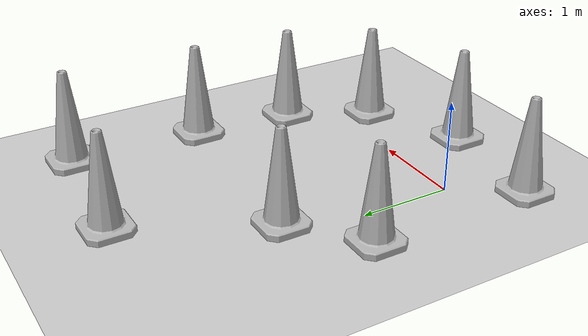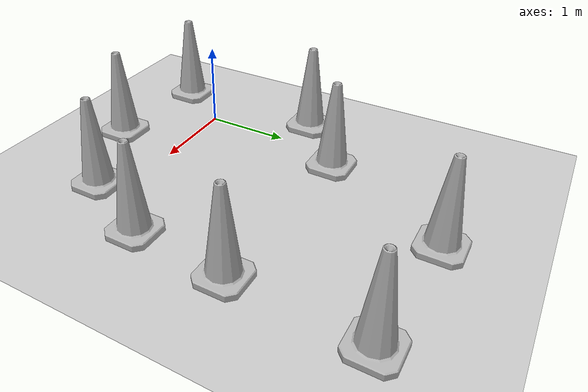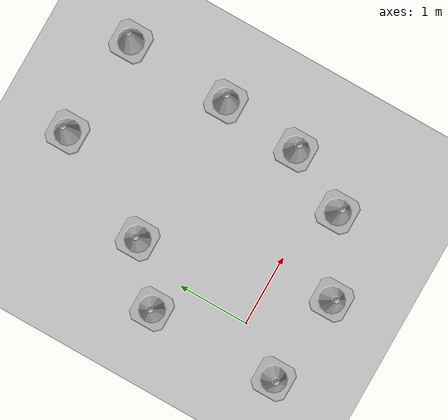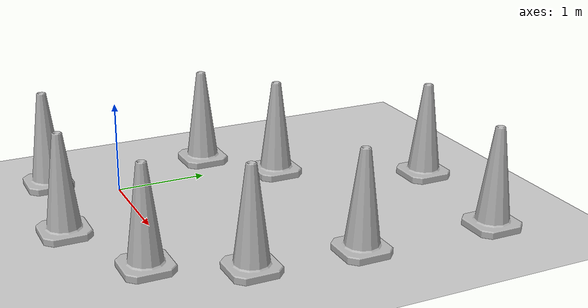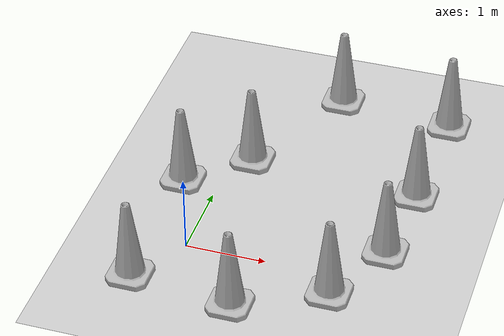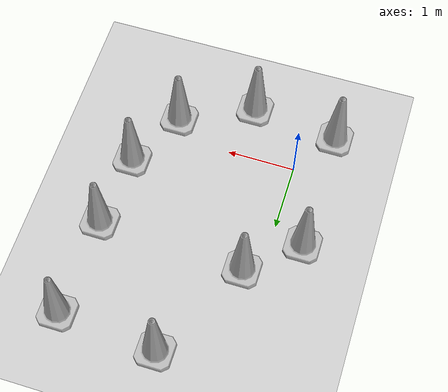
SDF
<sdf version="1.7">
 <world name="default">
  <light name="sun" type="directional">
   <pose>0 0 10 0 -0 0</pose>
   <diffuse>0.8 0.8 0.8 1</diffuse>
   <specular>0.2 0.2 0.2 1</specular>
   <attenuation>
    <range>1000</range>
    <constant>0.9</constant>
    <linear>0.01</linear>
    <quadratic>0.001</quadratic>
   </attenuation>
   <direction>-0.5 0.1 -0.9</direction>
   <spot><inner_angle>0</inner_angle><outer_angle>0</outer_angle><falloff>0</falloff></spot>
  </light>
  <model name="ground_plane">
   <static>1</static>
   <link name="link">
    <collision name="collision">
     <geometry><plane><normal>0 0 1</normal><size>100 100</size></plane></geometry>
     <surface>
      <contact><collide_bitmask>65535</collide_bitmask></contact>
      <friction><ode><mu>100</mu><mu2>50</mu2></ode></friction>
     </surface>
    </collision>
    <visual name="visual">
     <cast_shadows>0</cast_shadows>
     <geometry><plane><normal>0 0 1</normal><size>100 100</size></plane></geometry>
     <material>
      <script><uri>file://media/materials/scripts/gazebo.material</uri><name>Gazebo/Grey</name></script>
     </material>
    </visual>
   </link>
  </model>
  <gravity>0 0 -9.8</gravity>
  <magnetic_field>6e-06 2.3e-05 -4.2e-05</magnetic_field>
  <atmosphere type="adiabatic"/>
  <physics type="ode">
   <max_step_size>0.001</max_step_size>
   <real_time_factor>1</real_time_factor>
   <real_time_update_rate>1000</real_time_update_rate>
  </physics>
  <scene><ambient>0.4 0.4 0.4 1</ambient><background>0.7 0.7 0.7 1</background><shadows>1</shadows></scene>
  <audio><device>default</device></audio>
  <spherical_coordinates>
   <surface_model>EARTH_WGS84</surface_model>
   <latitude_deg>0</latitude_deg>
   <longitude_deg>0</longitude_deg>
   <elevation>0</elevation>
   <heading_deg>0</heading_deg>
  </spherical_coordinates>
  <model name="Construction Cone">
   <link name="link">
    <collision name="collision">
     <geometry>
      <mesh><scale>10 10 10</scale><uri>model://construction_cone/meshes/construction_cone.dae</uri></mesh>
     </geometry>
    </collision>
    <visual name="visual">
     <geometry>
      <mesh><scale>10 10 10</scale><uri>model://construction_cone/meshes/construction_cone.dae</uri></mesh>
     </geometry>
    </visual>
    <inertial>
     <inertia><ixx>1</ixx><ixy>0</ixy><ixz>0</ixz><iyy>1</iyy><iyz>0</iyz><izz>1</izz></inertia>
     <mass>1</mass>
    </inertial>
   </link>
   <pose>0.832208 -0.832208 -0 0 -0 0</pose>
  </model>
  <model name="Construction Cone_0">
   <link name="link">
    <collision name="collision">
     <geometry>
      <mesh><scale>10 10 10</scale><uri>model://construction_cone/meshes/construction_cone.dae</uri></mesh>
     </geometry>
    </collision>
    <visual name="visual">
     <geometry>
      <mesh><scale>10 10 10</scale><uri>model://construction_cone/meshes/construction_cone.dae</uri></mesh>
     </geometry>
    </visual>
    <inertial>
     <inertia><ixx>1</ixx><ixy>0</ixy><ixz>0</ixz><iyy>1</iyy><iyz>0</iyz><izz>1</izz></inertia>
     <mass>1</mass>
    </inertial>
   </link>
   <pose>-0.456899 -0.679908 -0 0 -0 0</pose>
  </model>
  <model name="Construction Cone_1">
   <link name="link">
    <collision name="collision">
     <geometry>
      <mesh><scale>10 10 10</scale><uri>model://construction_cone/meshes/construction_cone.dae</uri></mesh>
     </geometry>
    </collision>
    <visual name="visual">
     <geometry>
      <mesh><scale>10 10 10</scale><uri>model://construction_cone/meshes/construction_cone.dae</uri></mesh>
     </geometry>
    </visual>
    <inertial>
     <inertia><ixx>1</ixx><ixy>0</ixy><ixz>0</ixz><iyy>1</iyy><iyz>0</iyz><izz>1</izz></inertia>
     <mass>1</mass>
    </inertial>
   </link>
   <pose>1.88143 -0.325803 -0 0 -1e-06 0</pose>
  </model>
  <model name="Construction Cone_2">
   <link name="link">
    <collision name="collision">
     <geometry>
      <mesh><scale>10 10 10</scale><uri>model://construction_cone/meshes/construction_cone.dae</uri></mesh>
     </geometry>
    </collision>
    <visual name="visual">
     <geometry>
      <mesh><scale>10 10 10</scale><uri>model://construction_cone/meshes/construction_cone.dae</uri></mesh>
     </geometry>
    </visual>
    <inertial>
     <inertia><ixx>1</ixx><ixy>0</ixy><ixz>0</ixz><iyy>1</iyy><iyz>0</iyz><izz>1</izz></inertia>
     <mass>1</mass>
    </inertial>
   </link>
   <pose>2.32745 0.560798 -0 0 -1e-06 0</pose>
  </model>
  <model name="Construction Cone_3">
   <link name="link">
    <collision name="collision">
     <geometry>
      <mesh><scale>10 10 10</scale><uri>model://construction_cone/meshes/construction_cone.dae</uri></mesh>
     </geometry>
    </collision>
    <visual name="visual">
     <geometry>
      <mesh><scale>10 10 10</scale><uri>model://construction_cone/meshes/construction_cone.dae</uri></mesh>
     </geometry>
    </visual>
    <inertial>
     <inertia><ixx>1</ixx><ixy>0</ixy><ixz>0</ixz><iyy>1</iyy><iyz>0</iyz><izz>1</izz></inertia>
     <mass>1</mass>
    </inertial>
   </link>
   <pose>2.42628 1.68782 -0 -0 -0 -0</pose>
  </model>
  <model name="Construction Cone_4">
   <link name="link">
    <collision name="collision">
     <geometry>
      <mesh><scale>10 10 10</scale><uri>model://construction_cone/meshes/construction_cone.dae</uri></mesh>
     </geometry>
    </collision>
    <visual name="visual">
     <geometry>
      <mesh><scale>10 10 10</scale><uri>model://construction_cone/meshes/construction_cone.dae</uri></mesh>
     </geometry>
    </visual>
    <inertial>
     <inertia><ixx>1</ixx><ixy>0</ixy><ixz>0</ixz><iyy>1</iyy><iyz>0</iyz><izz>1</izz></inertia>
     <mass>1</mass>
    </inertial>
   </link>
   <pose>2.49699 3.17818 -0 0 -0 0</pose>
  </model>
  <model name="Construction Cone_5">
   <link name="link">
    <collision name="collision">
     <geometry>
      <mesh><scale>10 10 10</scale><uri>model://construction_cone/meshes/construction_cone.dae</uri></mesh>
     </geometry>
    </collision>
    <visual name="visual">
     <geometry>
      <mesh><scale>10 10 10</scale><uri>model://construction_cone/meshes/construction_cone.dae</uri></mesh>
     </geometry>
    </visual>
    <inertial>
     <inertia><ixx>1</ixx><ixy>0</ixy><ixz>0</ixz><iyy>1</iyy><iyz>0</iyz><izz>1</izz></inertia>
     <mass>1</mass>
    </inertial>
   </link>
   <pose>-0.450476 1.17653 -0 0 -0 0</pose>
  </model>
  <model name="Construction Cone_6">
   <link name="link">
    <collision name="collision">
     <geometry>
      <mesh><scale>10 10 10</scale><uri>model://construction_cone/meshes/construction_cone.dae</uri></mesh>
     </geometry>
    </collision>
    <visual name="visual">
     <geometry>
      <mesh><scale>10 10 10</scale><uri>model://construction_cone/meshes/construction_cone.dae</uri></mesh>
     </geometry>
    </visual>
    <inertial>
     <inertia><ixx>1</ixx><ixy>0</ixy><ixz>0</ixz><iyy>1</iyy><iyz>0</iyz><izz>1</izz></inertia>
     <mass>1</mass>
    </inertial>
   </link>
   <pose>0.26207 1.80204 -0 1e-06 -0 0</pose>
  </model>
  <model name="Construction Cone_7">
   <link name="link">
    <collision name="collision">
     <geometry>
      <mesh><scale>10 10 10</scale><uri>model://construction_cone/meshes/construction_cone.dae</uri></mesh>
     </geometry>
    </collision>
    <visual name="visual">
     <geometry>
      <mesh><scale>10 10 10</scale><uri>model://construction_cone/meshes/construction_cone.dae</uri></mesh>
     </geometry>
    </visual>
    <inertial>
     <inertia><ixx>1</ixx><ixy>0</ixy><ixz>0</ixz><iyy>1</iyy><iyz>0</iyz><izz>1</izz></inertia>
     <mass>1</mass>
    </inertial>
   </link>
   <pose>1.03445 3.31416 -0 0 -0 0</pose>
  </model>
 </world>
</sdf>
